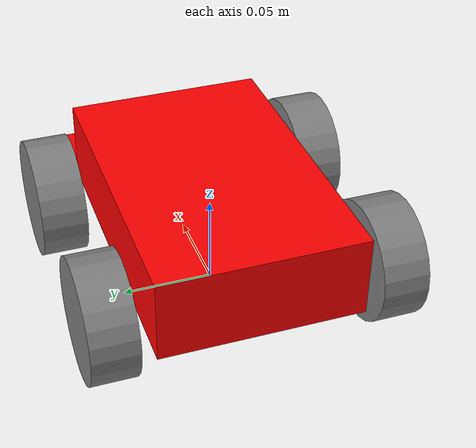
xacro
<?xml version="1.0"?>
<robot xmlns:xacro="http://www.ros.org/wiki/xacro" name="minicar">

    <link name="world"/>

    <xacro:property name="const" value="0.083"/>
    <xacro:property name="massV" value="0.8"/>
    <xacro:property name="width" value="0.22"/>
    <xacro:property name="heigth" value="0.045"/>
    <xacro:property name="depth" value="0.11"/>

    <xacro:property name="massWheel" value="0.05"/>
    <xacro:property name="radiusWheel" value="0.033"/>
    <xacro:property name="heightWheel" value="0.025"/>

    <!-- chassis -->
    <link name="chassis">
        <inertial>
            <origin xyz="0.0 0.0 0.0" rpy="0.0 0.0 0.0"/>
            <mass value="${massV}"/>
            <inertia ixx="${const * massV * (heigth * heigth + depth * depth)}" ixy="0.0" ixz="0.0"
                    iyy="${const * massV * (heigth * heigth + width * width)}" iyz="0.0"
                    izz="${const * massV * (width * width + depth * depth)}"/>
        </inertial>
        <visual name="">
            <origin xyz="0.0 0.0 0.0" rpy="0.0 0.0 0.0"/>
            <geometry>
                <box size="0.17 0.11 0.045"/>
            </geometry>
            <material name="">
                <color rgba="1.0 0.0 0.0 1.0"/>
                <texture filename=""/>
            </material>
        </visual>
        <collision>
            <origin xyz="0.0 0.0 0.0" rpy="0.0 0.0 0.0"/>
            <geometry>
                <box size="0.22 0.11 0.045"/>
            </geometry>
        </collision>
    </link>

    <joint name="base_joint" type="fixed">
        <origin xyz="0.0 0.0 0.05" rpy="0.0 0.0 0.0"/>
        <parent link="world"/>
        <child link="chassis"/>
        <axis xyz="0.0 0.0 0.0"/>
    </joint>

    <link name="chassis_front_link">
        <visual name="">
            <origin xyz="0.0 0.0 0.0" rpy="0.0 0.0 0.0"/>
            <geometry>
                <box size="0.05 0.11 0.003"/>
            </geometry>
            <material name="">
                <color rgba="1.0 0.0 0.0 1.0"/>
                <texture filename=""/>
            </material>
        </visual>
    </link>

    <joint name="chassis_front_joint" type="fixed">
        <parent link="chassis"/>
        <child link="chassis_front_link"/>
        <origin xyz="0.1 0.0 -0.021" rpy="0.0 0.0 0.0"/>
    </joint>

    <!-- Wheel macro-->
    <xacro:macro name="wheel" params="name x y z">
        <link name="wheel_${name}_link">
            <inertial>
                <origin xyz="0.0 0.0 0.0" rpy="0.0 0.0 0.0"/>
                <mass value="0.05"/>
                <inertia ixx="${const*massWheel*(3*radiusWheel*radiusWheel + heightWheel*heightWheel)}" ixy="0.0" ixz="0.0"
                        iyy="${const*massWheel*(3*radiusWheel*radiusWheel + heightWheel*heightWheel)}" iyz="0.0"
                        izz="${0.5*massWheel*radiusWheel*radiusWheel}"/>
            </inertial>
            <visual name="">
                <origin xyz="0.0 0.0 0.0" rpy="0.0 0.0 0.0"/>
                <geometry>
                    <cylinder radius="0.033" length="0.025"/>
                </geometry>
                <material name="gray">
                    <color rgba="0.5 0.5 0.5 1.0"/>
                    <texture filename=""/>
                </material>
            </visual>
            <collision>
                <origin xyz="0.0 0.0 0.0" rpy="0.0 0.0 0.0"/>
                <geometry>
                    <cylinder radius="0.033" length="0.025"/>
                </geometry>
            </collision>
        </link>
        <joint name="wheel_${name}_joint" type="continuous">
            <parent link="chassis"/>
            <child link="wheel_${name}_link"/>
            <axis xyz="0 0 -1"/>
            <origin xyz="${x} ${y} ${z}" rpy="1.5707 0 0"/>
        </joint>

        <gazebo reference="wheel_${name}_joint">
            <mu1 value="200.0"/>
            <mu2 value="100.0"/>
            <kp value="10000000.0" />
            <kd value="1.0" />
            <material>Gazebo/Grey</material>
        </gazebo>

        <transmission name="wheel_${name}_trasm">
            <type>transmission_interface/SimpleTransmission</type>
            <actuator name="$wheel_${name}_joint_motor">
                <mechanicalReduction>1</mechanicalReduction>
            </actuator>
            <joint name="wheel_${name}_joint">
                <hardwareInterface>hardware_interface/VelocityJointInterface</hardwareInterface>
            </joint>
        </transmission>

    </xacro:macro>

    <!-- Wheels generation-->
    <xacro:wheel name="rear_right" x="-0.055" y="-0.0755" z="-0.014"/>
    <xacro:wheel name="rear_left" x="-0.055" y="0.0755" z="-0.014"/>
    <xacro:wheel name="front_right" x="0.055" y="-0.0755" z="-0.014"/>
    <xacro:wheel name="front_left" x="0.055" y="0.0755" z="-0.014"/>

    <gazebo>
        <plugin name="gazebo_ros_control" filename="libgazebo_ros_control.so">
            <robotNamespace>/</robotNamespace>
        </plugin>
    </gazebo>

</robot>
